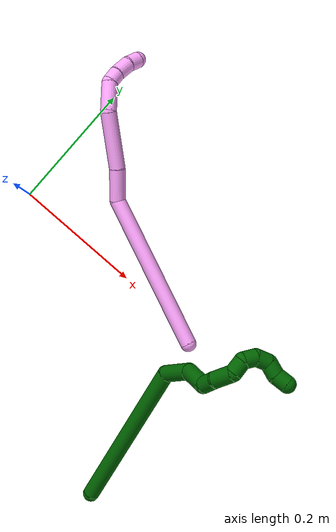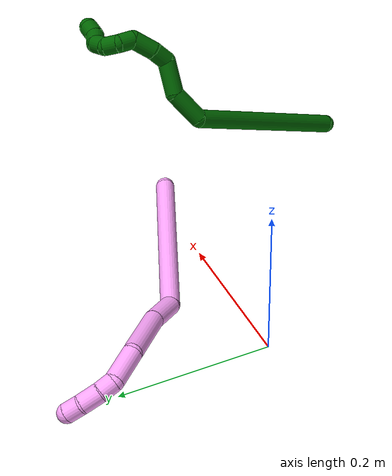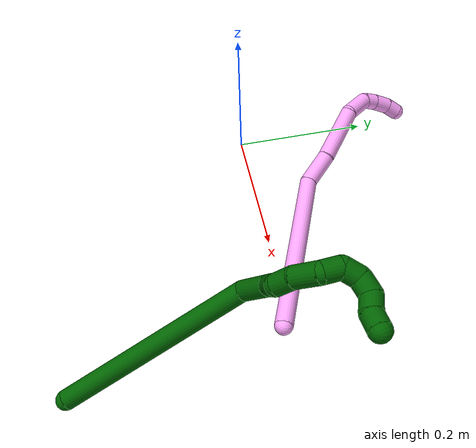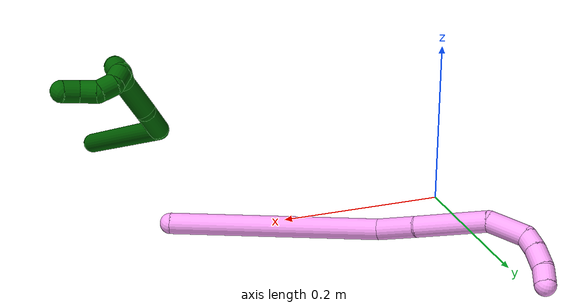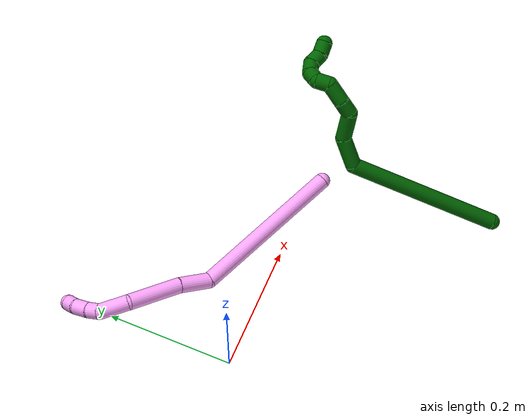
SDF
<sdf version="1.7">
 <world name="default">
  <model name="bin">
   <static>1</static>
   <link name="bottom">
    <collision name="collision-bottom">
     <pose>0 0 -0.01 0 -0 0</pose>
     <geometry><box><size>0.8 0.6 0.02</size></box></geometry>
     <surface>
      <friction><ode><mu>100</mu><mu2>100</mu2></ode></friction>
      <contact><collide_bitmask>65535</collide_bitmask></contact>
     </surface>
    </collision>
   </link>
   <link name="west_wall">
    <collision name="collision-west_wall">
     <pose>-0.41 0 0.1 0 -0 0</pose>
     <geometry><box><size>0.02 0.6 0.2</size></box></geometry>
     <surface>
      <friction><ode><mu>100</mu><mu2>100</mu2></ode></friction>
      <contact><collide_bitmask>65535</collide_bitmask></contact>
     </surface>
    </collision>
   </link>
   <link name="east_wall">
    <collision name="collision-east_wall">
     <pose>0.41 0 0.1 0 -0 0</pose>
     <geometry><box><size>0.02 0.6 0.2</size></box></geometry>
     <surface>
      <friction><ode><mu>100</mu><mu2>100</mu2></ode></friction>
      <contact><collide_bitmask>65535</collide_bitmask></contact>
     </surface>
    </collision>
   </link>
   <link name="south_wall">
    <collision name="collision-south_wall">
     <pose>0 -0.31 0.1 0 -0 0</pose>
     <geometry><box><size>0.8 0.02 0.2</size></box></geometry>
     <surface>
      <friction><ode><mu>100</mu><mu2>100</mu2></ode></friction>
      <contact><collide_bitmask>65535</collide_bitmask></contact>
     </surface>
    </collision>
   </link>
   <link name="north_wall">
    <collision name="collision-north_wall">
     <pose>0 0.31 0.1 0 -0 0</pose>
     <geometry><box><size>0.8 0.02 0.2</size></box></geometry>
     <surface>
      <friction><ode><mu>100</mu><mu2>100</mu2></ode></friction>
      <contact><collide_bitmask>65535</collide_bitmask></contact>
     </surface>
    </collision>
   </link>
  </model>
  <model name="4">
   <static>0</static>
   <link name="4">
    <collision name="collision-cylinder-e_1_1_4">
     <pose>-0.109731 0.050428 0.027769 -1.06743 -1.08764 0.68631</pose>
     <geometry><cylinder><radius>0.0125</radius><length>0.24783</length></cylinder></geometry>
     <surface>
      <friction><ode><mu>1.16</mu><mu2>1.16</mu2><slip1>0</slip1><slip2>0</slip2></ode></friction>
      <contact><ode><kp>1e+06</kp><kd>1</kd><max_vel>0</max_vel><min_depth>0.001</min_depth></ode></contact>
     </surface>
    </collision>
    <visual name="visual-cylinder-e_1_1_4">
     <pose>-0.109731 0.050428 0.027769 -1.06743 -1.08764 0.68631</pose>
     <geometry><cylinder><radius>0.0125</radius><length>0.24783</length></cylinder></geometry>
     <material><ambient>1 0.65098 0.996078 1</ambient></material>
    </visual>
    <collision name="collision-cylinder-e_2_4_5">
     <pose>-0.233014 0.116662 0.069973 -0.830754 -0.564416 0.254375</pose>
     <geometry><cylinder><radius>0.0125</radius><length>0.050669</length></cylinder></geometry>
     <surface>
      <friction><ode><mu>1.16</mu><mu2>1.16</mu2><slip1>0</slip1><slip2>0</slip2></ode></friction>
      <contact><ode><kp>1e+06</kp><kd>1</kd><max_vel>0</max_vel><min_depth>0.001</min_depth></ode></contact>
     </surface>
    </collision>
    <visual name="visual-cylinder-e_2_4_5">
     <pose>-0.233014 0.116662 0.069973 -0.830754 -0.564416 0.254375</pose>
     <geometry><cylinder><radius>0.0125</radius><length>0.050669</length></cylinder></geometry>
     <material><ambient>1 0.65098 0.996078 1</ambient></material>
    </visual>
    <collision name="collision-cylinder-e_3_5_6">
     <pose>-0.27541 0.15689 0.106866 -0.827241 -0.715623 0.325346</pose>
     <geometry><cylinder><radius>0.0125</radius><length>0.087928</length></cylinder></geometry>
     <surface>
      <friction><ode><mu>1.16</mu><mu2>1.16</mu2><slip1>0</slip1><slip2>0</slip2></ode></friction>
      <contact><ode><kp>1e+06</kp><kd>1</kd><max_vel>0</max_vel><min_depth>0.001</min_depth></ode></contact>
     </surface>
    </collision>
    <visual name="visual-cylinder-e_3_5_6">
     <pose>-0.27541 0.15689 0.106866 -0.827241 -0.715623 0.325346</pose>
     <geometry><cylinder><radius>0.0125</radius><length>0.087928</length></cylinder></geometry>
     <material><ambient>1 0.65098 0.996078 1</ambient></material>
    </visual>
    <collision name="collision-cylinder-e_4_6_7">
     <pose>-0.317611 0.200037 0.133085 -1.37262 -0.610279 0.505012</pose>
     <geometry><cylinder><radius>0.0125</radius><length>0.046611</length></cylinder></geometry>
     <surface>
      <friction><ode><mu>1.16</mu><mu2>1.16</mu2><slip1>0</slip1><slip2>0</slip2></ode></friction>
      <contact><ode><kp>1e+06</kp><kd>1</kd><max_vel>0</max_vel><min_depth>0.001</min_depth></ode></contact>
     </surface>
    </collision>
    <visual name="visual-cylinder-e_4_6_7">
     <pose>-0.317611 0.200037 0.133085 -1.37262 -0.610279 0.505012</pose>
     <geometry><cylinder><radius>0.0125</radius><length>0.046611</length></cylinder></geometry>
     <material><ambient>1 0.65098 0.996078 1</ambient></material>
    </visual>
    <collision name="collision-cylinder-e_5_7_8">
     <pose>-0.331608 0.228733 0.135888 -1.66654 -0.06395 0.070381</pose>
     <geometry><cylinder><radius>0.0125</radius><length>0.020074</length></cylinder></geometry>
     <surface>
      <friction><ode><mu>1.16</mu><mu2>1.16</mu2><slip1>0</slip1><slip2>0</slip2></ode></friction>
      <contact><ode><kp>1e+06</kp><kd>1</kd><max_vel>0</max_vel><min_depth>0.001</min_depth></ode></contact>
     </surface>
    </collision>
    <visual name="visual-cylinder-e_5_7_8">
     <pose>-0.331608 0.228733 0.135888 -1.66654 -0.06395 0.070381</pose>
     <geometry><cylinder><radius>0.0125</radius><length>0.020074</length></cylinder></geometry>
     <material><ambient>1 0.65098 0.996078 1</ambient></material>
    </visual>
    <collision name="collision-cylinder-e_6_8_9">
     <pose>-0.331048 0.251577 0.132748 -1.73872 0.091818 -0.108663</pose>
     <geometry><cylinder><radius>0.0125</radius><length>0.026225</length></cylinder></geometry>
     <surface>
      <friction><ode><mu>1.16</mu><mu2>1.16</mu2><slip1>0</slip1><slip2>0</slip2></ode></friction>
      <contact><ode><kp>1e+06</kp><kd>1</kd><max_vel>0</max_vel><min_depth>0.001</min_depth></ode></contact>
     </surface>
    </collision>
    <visual name="visual-cylinder-e_6_8_9">
     <pose>-0.331048 0.251577 0.132748 -1.73872 0.091818 -0.108663</pose>
     <geometry><cylinder><radius>0.0125</radius><length>0.026225</length></cylinder></geometry>
     <material><ambient>1 0.65098 0.996078 1</ambient></material>
    </visual>
    <collision name="collision-cylinder-e_7_9_2">
     <pose>-0.327222 0.273821 0.127094 -1.92563 0.256754 -0.366815</pose>
     <geometry><cylinder><radius>0.0125</radius><length>0.020662</length></cylinder></geometry>
     <surface>
      <friction><ode><mu>1.16</mu><mu2>1.16</mu2><slip1>0</slip1><slip2>0</slip2></ode></friction>
      <contact><ode><kp>1e+06</kp><kd>1</kd><max_vel>0</max_vel><min_depth>0.001</min_depth></ode></contact>
     </surface>
    </collision>
    <visual name="visual-cylinder-e_7_9_2">
     <pose>-0.327222 0.273821 0.127094 -1.92563 0.256754 -0.366815</pose>
     <geometry><cylinder><radius>0.0125</radius><length>0.020662</length></cylinder></geometry>
     <material><ambient>1 0.65098 0.996078 1</ambient></material>
    </visual>
    <collision name="collision-sphere-2">
     <pose>-0.324598 0.28319 0.123622 0 -0 0</pose>
     <geometry><sphere><radius>0.0125</radius></sphere></geometry>
     <surface>
      <friction><ode><mu>1.16</mu><mu2>1.16</mu2><slip1>0</slip1><slip2>0</slip2></ode></friction>
      <contact><ode><kp>1e+06</kp><kd>1</kd><max_vel>0</max_vel><min_depth>0.001</min_depth></ode></contact>
     </surface>
    </collision>
    <visual name="visual-sphere-2">
     <pose>-0.324598 0.28319 0.123622 0 -0 0</pose>
     <geometry><sphere><radius>0.0125</radius></sphere></geometry>
     <material><ambient>1 0.65098 0.996078 1</ambient></material>
    </visual>
    <collision name="collision-sphere-9">
     <pose>-0.329845 0.264451 0.130565 0 -0 0</pose>
     <geometry><sphere><radius>0.0125</radius></sphere></geometry>
     <surface>
      <friction><ode><mu>1.16</mu><mu2>1.16</mu2><slip1>0</slip1><slip2>0</slip2></ode></friction>
      <contact><ode><kp>1e+06</kp><kd>1</kd><max_vel>0</max_vel><min_depth>0.001</min_depth></ode></contact>
     </surface>
    </collision>
    <visual name="visual-sphere-9">
     <pose>-0.329845 0.264451 0.130565 0 -0 0</pose>
     <geometry><sphere><radius>0.0125</radius></sphere></geometry>
     <material><ambient>1 0.65098 0.996078 1</ambient></material>
    </visual>
    <collision name="collision-sphere-4">
     <pose>-0.219462 0.100855 0.055539 0 -0 0</pose>
     <geometry><sphere><radius>0.0125</radius></sphere></geometry>
     <surface>
      <friction><ode><mu>1.16</mu><mu2>1.16</mu2><slip1>0</slip1><slip2>0</slip2></ode></friction>
      <contact><ode><kp>1e+06</kp><kd>1</kd><max_vel>0</max_vel><min_depth>0.001</min_depth></ode></contact>
     </surface>
    </collision>
    <visual name="visual-sphere-4">
     <pose>-0.219462 0.100855 0.055539 0 -0 0</pose>
     <geometry><sphere><radius>0.0125</radius></sphere></geometry>
     <material><ambient>1 0.65098 0.996078 1</ambient></material>
    </visual>
    <collision name="collision-sphere-1">
     <geometry><sphere><radius>0.0125</radius></sphere></geometry>
     <surface>
      <friction><ode><mu>1.16</mu><mu2>1.16</mu2><slip1>0</slip1><slip2>0</slip2></ode></friction>
      <contact><ode><kp>1e+06</kp><kd>1</kd><max_vel>0</max_vel><min_depth>0.001</min_depth></ode></contact>
     </surface>
    </collision>
    <visual name="visual-sphere-1">
     <geometry><sphere><radius>0.0125</radius></sphere></geometry>
     <material><ambient>1 0.65098 0.996078 1</ambient></material>
    </visual>
    <collision name="collision-sphere-8">
     <pose>-0.33225 0.238703 0.13493 0 -0 0</pose>
     <geometry><sphere><radius>0.0125</radius></sphere></geometry>
     <surface>
      <friction><ode><mu>1.16</mu><mu2>1.16</mu2><slip1>0</slip1><slip2>0</slip2></ode></friction>
      <contact><ode><kp>1e+06</kp><kd>1</kd><max_vel>0</max_vel><min_depth>0.001</min_depth></ode></contact>
     </surface>
    </collision>
    <visual name="visual-sphere-8">
     <pose>-0.33225 0.238703 0.13493 0 -0 0</pose>
     <geometry><sphere><radius>0.0125</radius></sphere></geometry>
     <material><ambient>1 0.65098 0.996078 1</ambient></material>
    </visual>
    <collision name="collision-sphere-5">
     <pose>-0.246566 0.132468 0.084406 0 -0 0</pose>
     <geometry><sphere><radius>0.0125</radius></sphere></geometry>
     <surface>
      <friction><ode><mu>1.16</mu><mu2>1.16</mu2><slip1>0</slip1><slip2>0</slip2></ode></friction>
      <contact><ode><kp>1e+06</kp><kd>1</kd><max_vel>0</max_vel><min_depth>0.001</min_depth></ode></contact>
     </surface>
    </collision>
    <visual name="visual-sphere-5">
     <pose>-0.246566 0.132468 0.084406 0 -0 0</pose>
     <geometry><sphere><radius>0.0125</radius></sphere></geometry>
     <material><ambient>1 0.65098 0.996078 1</ambient></material>
    </visual>
    <collision name="collision-sphere-6">
     <pose>-0.304254 0.181312 0.129325 0 -0 0</pose>
     <geometry><sphere><radius>0.0125</radius></sphere></geometry>
     <surface>
      <friction><ode><mu>1.16</mu><mu2>1.16</mu2><slip1>0</slip1><slip2>0</slip2></ode></friction>
      <contact><ode><kp>1e+06</kp><kd>1</kd><max_vel>0</max_vel><min_depth>0.001</min_depth></ode></contact>
     </surface>
    </collision>
    <visual name="visual-sphere-6">
     <pose>-0.304254 0.181312 0.129325 0 -0 0</pose>
     <geometry><sphere><radius>0.0125</radius></sphere></geometry>
     <material><ambient>1 0.65098 0.996078 1</ambient></material>
    </visual>
    <collision name="collision-sphere-7">
     <pose>-0.330967 0.218762 0.136845 0 -0 0</pose>
     <geometry><sphere><radius>0.0125</radius></sphere></geometry>
     <surface>
      <friction><ode><mu>1.16</mu><mu2>1.16</mu2><slip1>0</slip1><slip2>0</slip2></ode></friction>
      <contact><ode><kp>1e+06</kp><kd>1</kd><max_vel>0</max_vel><min_depth>0.001</min_depth></ode></contact>
     </surface>
    </collision>
    <visual name="visual-sphere-7">
     <pose>-0.330967 0.218762 0.136845 0 -0 0</pose>
     <geometry><sphere><radius>0.0125</radius></sphere></geometry>
     <material><ambient>1 0.65098 0.996078 1</ambient></material>
    </visual>
    <inertial>
     <pose>-0.200243 0.116749 0.069725 0 -0 0</pose>
     <mass>0.5</mass>
     <inertia>
      <ixx>0.000897</ixx>
      <ixy>0</ixy>
      <ixz>0</ixz>
      <iyy>0.001585</iyy>
      <iyz>0</iyz>
      <izz>0.000618</izz>
     </inertia>
    </inertial>
   </link>
   <pose>0.339693 -0.013008 0.011499 -0.300064 -0.105533 0.07778</pose>
  </model>
  <model name="6">
   <static>0</static>
   <link name="6">
    <collision name="collision-cylinder-e_1_1_4">
     <pose>0.07601 -0.032471 0.092269 0.338383 0.660605 0.117005</pose>
     <geometry><cylinder><radius>0.0125</radius><length>0.247753</length></cylinder></geometry>
     <surface>
      <friction><ode><mu>1.16</mu><mu2>1.16</mu2><slip1>0</slip1><slip2>0</slip2></ode></friction>
      <contact><ode><kp>1e+06</kp><kd>1</kd><max_vel>0</max_vel><min_depth>0.001</min_depth></ode></contact>
     </surface>
    </collision>
    <visual name="visual-cylinder-e_1_1_4">
     <pose>0.07601 -0.032471 0.092269 0.338383 0.660605 0.117005</pose>
     <geometry><cylinder><radius>0.0125</radius><length>0.247753</length></cylinder></geometry>
     <material><ambient>0 0.392157 0.003922 1</ambient></material>
    </visual>
    <collision name="collision-cylinder-e_2_4_5">
     <pose>0.176148 -0.0658 0.18759 0.27392 1.44013 0.240624</pose>
     <geometry><cylinder><radius>0.0125</radius><length>0.048672</length></cylinder></geometry>
     <surface>
      <friction><ode><mu>1.16</mu><mu2>1.16</mu2><slip1>0</slip1><slip2>0</slip2></ode></friction>
      <contact><ode><kp>1e+06</kp><kd>1</kd><max_vel>0</max_vel><min_depth>0.001</min_depth></ode></contact>
     </surface>
    </collision>
    <visual name="visual-cylinder-e_2_4_5">
     <pose>0.176148 -0.0658 0.18759 0.27392 1.44013 0.240624</pose>
     <geometry><cylinder><radius>0.0125</radius><length>0.048672</length></cylinder></geometry>
     <material><ambient>0 0.392157 0.003922 1</ambient></material>
    </visual>
    <collision name="collision-cylinder-e_3_5_6">
     <pose>0.221073 -0.068809 0.181037 2.92122 1.12873 2.79556</pose>
     <geometry><cylinder><radius>0.0125</radius><length>0.046016</length></cylinder></geometry>
     <surface>
      <friction><ode><mu>1.16</mu><mu2>1.16</mu2><slip1>0</slip1><slip2>0</slip2></ode></friction>
      <contact><ode><kp>1e+06</kp><kd>1</kd><max_vel>0</max_vel><min_depth>0.001</min_depth></ode></contact>
     </surface>
    </collision>
    <visual name="visual-cylinder-e_3_5_6">
     <pose>0.221073 -0.068809 0.181037 2.92122 1.12873 2.79556</pose>
     <geometry><cylinder><radius>0.0125</radius><length>0.046016</length></cylinder></geometry>
     <material><ambient>0 0.392157 0.003922 1</ambient></material>
    </visual>
    <collision name="collision-cylinder-e_4_6_7">
     <pose>0.25305 -0.072942 0.175193 0.484857 1.20752 0.337849</pose>
     <geometry><cylinder><radius>0.0125</radius><length>0.023923</length></cylinder></geometry>
     <surface>
      <friction><ode><mu>1.16</mu><mu2>1.16</mu2><slip1>0</slip1><slip2>0</slip2></ode></friction>
      <contact><ode><kp>1e+06</kp><kd>1</kd><max_vel>0</max_vel><min_depth>0.001</min_depth></ode></contact>
     </surface>
    </collision>
    <visual name="visual-cylinder-e_4_6_7">
     <pose>0.25305 -0.072942 0.175193 0.484857 1.20752 0.337849</pose>
     <geometry><cylinder><radius>0.0125</radius><length>0.023923</length></cylinder></geometry>
     <material><ambient>0 0.392157 0.003922 1</ambient></material>
    </visual>
    <collision name="collision-cylinder-e_5_7_8">
     <pose>0.279026 -0.07425 0.18526 -0.106301 1.16579 -0.070123</pose>
     <geometry><cylinder><radius>0.0125</radius><length>0.032195</length></cylinder></geometry>
     <surface>
      <friction><ode><mu>1.16</mu><mu2>1.16</mu2><slip1>0</slip1><slip2>0</slip2></ode></friction>
      <contact><ode><kp>1e+06</kp><kd>1</kd><max_vel>0</max_vel><min_depth>0.001</min_depth></ode></contact>
     </surface>
    </collision>
    <visual name="visual-cylinder-e_5_7_8">
     <pose>0.279026 -0.07425 0.18526 -0.106301 1.16579 -0.070123</pose>
     <geometry><cylinder><radius>0.0125</radius><length>0.032195</length></cylinder></geometry>
     <material><ambient>0 0.392157 0.003922 1</ambient></material>
    </visual>
    <collision name="collision-cylinder-e_6_8_9">
     <pose>0.298121 -0.072832 0.20129 -0.076494 0.415276 -0.016123</pose>
     <geometry><cylinder><radius>0.0125</radius><length>0.021315</length></cylinder></geometry>
     <surface>
      <friction><ode><mu>1.16</mu><mu2>1.16</mu2><slip1>0</slip1><slip2>0</slip2></ode></friction>
      <contact><ode><kp>1e+06</kp><kd>1</kd><max_vel>0</max_vel><min_depth>0.001</min_depth></ode></contact>
     </surface>
    </collision>
    <visual name="visual-cylinder-e_6_8_9">
     <pose>0.298121 -0.072832 0.20129 -0.076494 0.415276 -0.016123</pose>
     <geometry><cylinder><radius>0.0125</radius><length>0.021315</length></cylinder></geometry>
     <material><ambient>0 0.392157 0.003922 1</ambient></material>
    </visual>
    <collision name="collision-cylinder-e_7_9_10">
     <pose>0.306117 -0.064786 0.216774 -0.902788 0.378332 -0.185095</pose>
     <geometry><cylinder><radius>0.0125</radius><length>0.020013</length></cylinder></geometry>
     <surface>
      <friction><ode><mu>1.16</mu><mu2>1.16</mu2><slip1>0</slip1><slip2>0</slip2></ode></friction>
      <contact><ode><kp>1e+06</kp><kd>1</kd><max_vel>0</max_vel><min_depth>0.001</min_depth></ode></contact>
     </surface>
    </collision>
    <visual name="visual-cylinder-e_7_9_10">
     <pose>0.306117 -0.064786 0.216774 -0.902788 0.378332 -0.185095</pose>
     <geometry><cylinder><radius>0.0125</radius><length>0.020013</length></cylinder></geometry>
     <material><ambient>0 0.392157 0.003922 1</ambient></material>
    </visual>
    <collision name="collision-cylinder-e_8_10_11">
     <pose>0.314062 -0.048423 0.222499 -1.57457 0.43843 -0.440037</pose>
     <geometry><cylinder><radius>0.0125</radius><length>0.020019</length></cylinder></geometry>
     <surface>
      <friction><ode><mu>1.16</mu><mu2>1.16</mu2><slip1>0</slip1><slip2>0</slip2></ode></friction>
      <contact><ode><kp>1e+06</kp><kd>1</kd><max_vel>0</max_vel><min_depth>0.001</min_depth></ode></contact>
     </surface>
    </collision>
    <visual name="visual-cylinder-e_8_10_11">
     <pose>0.314062 -0.048423 0.222499 -1.57457 0.43843 -0.440037</pose>
     <geometry><cylinder><radius>0.0125</radius><length>0.020019</length></cylinder></geometry>
     <material><ambient>0 0.392157 0.003922 1</ambient></material>
    </visual>
    <collision name="collision-cylinder-e_9_11_12">
     <pose>0.321706 -0.032422 0.216044 -2.3175 0.34476 -0.75818</pose>
     <geometry><cylinder><radius>0.0125</radius><length>0.020089</length></cylinder></geometry>
     <surface>
      <friction><ode><mu>1.16</mu><mu2>1.16</mu2><slip1>0</slip1><slip2>0</slip2></ode></friction>
      <contact><ode><kp>1e+06</kp><kd>1</kd><max_vel>0</max_vel><min_depth>0.001</min_depth></ode></contact>
     </surface>
    </collision>
    <visual name="visual-cylinder-e_9_11_12">
     <pose>0.321706 -0.032422 0.216044 -2.3175 0.34476 -0.75818</pose>
     <geometry><cylinder><radius>0.0125</radius><length>0.020089</length></cylinder></geometry>
     <material><ambient>0 0.392157 0.003922 1</ambient></material>
    </visual>
    <collision name="collision-cylinder-e_10_12_2">
     <pose>0.331394 -0.018489 0.206231 -2.02235 0.680485 -1.02877</pose>
     <geometry><cylinder><radius>0.0125</radius><length>0.020006</length></cylinder></geometry>
     <surface>
      <friction><ode><mu>1.16</mu><mu2>1.16</mu2><slip1>0</slip1><slip2>0</slip2></ode></friction>
      <contact><ode><kp>1e+06</kp><kd>1</kd><max_vel>0</max_vel><min_depth>0.001</min_depth></ode></contact>
     </surface>
    </collision>
    <visual name="visual-cylinder-e_10_12_2">
     <pose>0.331394 -0.018489 0.206231 -2.02235 0.680485 -1.02877</pose>
     <geometry><cylinder><radius>0.0125</radius><length>0.020006</length></cylinder></geometry>
     <material><ambient>0 0.392157 0.003922 1</ambient></material>
    </visual>
    <collision name="collision-sphere-2">
     <pose>0.337688 -0.011493 0.202838 0 -0 0</pose>
     <geometry><sphere><radius>0.0125</radius></sphere></geometry>
     <surface>
      <friction><ode><mu>1.16</mu><mu2>1.16</mu2><slip1>0</slip1><slip2>0</slip2></ode></friction>
      <contact><ode><kp>1e+06</kp><kd>1</kd><max_vel>0</max_vel><min_depth>0.001</min_depth></ode></contact>
     </surface>
    </collision>
    <visual name="visual-sphere-2">
     <pose>0.337688 -0.011493 0.202838 0 -0 0</pose>
     <geometry><sphere><radius>0.0125</radius></sphere></geometry>
     <material><ambient>0 0.392157 0.003922 1</ambient></material>
    </visual>
    <collision name="collision-sphere-12">
     <pose>0.325101 -0.025484 0.209623 0 -0 0</pose>
     <geometry><sphere><radius>0.0125</radius></sphere></geometry>
     <surface>
      <friction><ode><mu>1.16</mu><mu2>1.16</mu2><slip1>0</slip1><slip2>0</slip2></ode></friction>
      <contact><ode><kp>1e+06</kp><kd>1</kd><max_vel>0</max_vel><min_depth>0.001</min_depth></ode></contact>
     </surface>
    </collision>
    <visual name="visual-sphere-12">
     <pose>0.325101 -0.025484 0.209623 0 -0 0</pose>
     <geometry><sphere><radius>0.0125</radius></sphere></geometry>
     <material><ambient>0 0.392157 0.003922 1</ambient></material>
    </visual>
    <collision name="collision-sphere-11">
     <pose>0.318311 -0.03936 0.222465 0 -0 0</pose>
     <geometry><sphere><radius>0.0125</radius></sphere></geometry>
     <surface>
      <friction><ode><mu>1.16</mu><mu2>1.16</mu2><slip1>0</slip1><slip2>0</slip2></ode></friction>
      <contact><ode><kp>1e+06</kp><kd>1</kd><max_vel>0</max_vel><min_depth>0.001</min_depth></ode></contact>
     </surface>
    </collision>
    <visual name="visual-sphere-11">
     <pose>0.318311 -0.03936 0.222465 0 -0 0</pose>
     <geometry><sphere><radius>0.0125</radius></sphere></geometry>
     <material><ambient>0 0.392157 0.003922 1</ambient></material>
    </visual>
    <collision name="collision-sphere-10">
     <pose>0.309813 -0.057486 0.222534 0 -0 0</pose>
     <geometry><sphere><radius>0.0125</radius></sphere></geometry>
     <surface>
      <friction><ode><mu>1.16</mu><mu2>1.16</mu2><slip1>0</slip1><slip2>0</slip2></ode></friction>
      <contact><ode><kp>1e+06</kp><kd>1</kd><max_vel>0</max_vel><min_depth>0.001</min_depth></ode></contact>
     </surface>
    </collision>
    <visual name="visual-sphere-10">
     <pose>0.309813 -0.057486 0.222534 0 -0 0</pose>
     <geometry><sphere><radius>0.0125</radius></sphere></geometry>
     <material><ambient>0 0.392157 0.003922 1</ambient></material>
    </visual>
    <collision name="collision-sphere-9">
     <pose>0.302421 -0.072086 0.211014 0 -0 0</pose>
     <geometry><sphere><radius>0.0125</radius></sphere></geometry>
     <surface>
      <friction><ode><mu>1.16</mu><mu2>1.16</mu2><slip1>0</slip1><slip2>0</slip2></ode></friction>
      <contact><ode><kp>1e+06</kp><kd>1</kd><max_vel>0</max_vel><min_depth>0.001</min_depth></ode></contact>
     </surface>
    </collision>
    <visual name="visual-sphere-9">
     <pose>0.302421 -0.072086 0.211014 0 -0 0</pose>
     <geometry><sphere><radius>0.0125</radius></sphere></geometry>
     <material><ambient>0 0.392157 0.003922 1</ambient></material>
    </visual>
    <collision name="collision-sphere-4">
     <pose>0.15202 -0.064942 0.184537 0 -0 0</pose>
     <geometry><sphere><radius>0.0125</radius></sphere></geometry>
     <surface>
      <friction><ode><mu>1.16</mu><mu2>1.16</mu2><slip1>0</slip1><slip2>0</slip2></ode></friction>
      <contact><ode><kp>1e+06</kp><kd>1</kd><max_vel>0</max_vel><min_depth>0.001</min_depth></ode></contact>
     </surface>
    </collision>
    <visual name="visual-sphere-4">
     <pose>0.15202 -0.064942 0.184537 0 -0 0</pose>
     <geometry><sphere><radius>0.0125</radius></sphere></geometry>
     <material><ambient>0 0.392157 0.003922 1</ambient></material>
    </visual>
    <collision name="collision-sphere-1">
     <geometry><sphere><radius>0.0125</radius></sphere></geometry>
     <surface>
      <friction><ode><mu>1.16</mu><mu2>1.16</mu2><slip1>0</slip1><slip2>0</slip2></ode></friction>
      <contact><ode><kp>1e+06</kp><kd>1</kd><max_vel>0</max_vel><min_depth>0.001</min_depth></ode></contact>
     </surface>
    </collision>
    <visual name="visual-sphere-1">
     <geometry><sphere><radius>0.0125</radius></sphere></geometry>
     <material><ambient>0 0.392157 0.003922 1</ambient></material>
    </visual>
    <collision name="collision-sphere-8">
     <pose>0.293821 -0.073577 0.191567 0 -0 0</pose>
     <geometry><sphere><radius>0.0125</radius></sphere></geometry>
     <surface>
      <friction><ode><mu>1.16</mu><mu2>1.16</mu2><slip1>0</slip1><slip2>0</slip2></ode></friction>
      <contact><ode><kp>1e+06</kp><kd>1</kd><max_vel>0</max_vel><min_depth>0.001</min_depth></ode></contact>
     </surface>
    </collision>
    <visual name="visual-sphere-8">
     <pose>0.293821 -0.073577 0.191567 0 -0 0</pose>
     <geometry><sphere><radius>0.0125</radius></sphere></geometry>
     <material><ambient>0 0.392157 0.003922 1</ambient></material>
    </visual>
    <collision name="collision-sphere-5">
     <pose>0.200277 -0.066657 0.190642 0 -0 0</pose>
     <geometry><sphere><radius>0.0125</radius></sphere></geometry>
     <surface>
      <friction><ode><mu>1.16</mu><mu2>1.16</mu2><slip1>0</slip1><slip2>0</slip2></ode></friction>
      <contact><ode><kp>1e+06</kp><kd>1</kd><max_vel>0</max_vel><min_depth>0.001</min_depth></ode></contact>
     </surface>
    </collision>
    <visual name="visual-sphere-5">
     <pose>0.200277 -0.066657 0.190642 0 -0 0</pose>
     <geometry><sphere><radius>0.0125</radius></sphere></geometry>
     <material><ambient>0 0.392157 0.003922 1</ambient></material>
    </visual>
    <collision name="collision-sphere-6">
     <pose>0.241869 -0.070961 0.171432 0 -0 0</pose>
     <geometry><sphere><radius>0.0125</radius></sphere></geometry>
     <surface>
      <friction><ode><mu>1.16</mu><mu2>1.16</mu2><slip1>0</slip1><slip2>0</slip2></ode></friction>
      <contact><ode><kp>1e+06</kp><kd>1</kd><max_vel>0</max_vel><min_depth>0.001</min_depth></ode></contact>
     </surface>
    </collision>
    <visual name="visual-sphere-6">
     <pose>0.241869 -0.070961 0.171432 0 -0 0</pose>
     <geometry><sphere><radius>0.0125</radius></sphere></geometry>
     <material><ambient>0 0.392157 0.003922 1</ambient></material>
    </visual>
    <collision name="collision-sphere-7">
     <pose>0.264231 -0.074923 0.178953 0 -0 0</pose>
     <geometry><sphere><radius>0.0125</radius></sphere></geometry>
     <surface>
      <friction><ode><mu>1.16</mu><mu2>1.16</mu2><slip1>0</slip1><slip2>0</slip2></ode></friction>
      <contact><ode><kp>1e+06</kp><kd>1</kd><max_vel>0</max_vel><min_depth>0.001</min_depth></ode></contact>
     </surface>
    </collision>
    <visual name="visual-sphere-7">
     <pose>0.264231 -0.074923 0.178953 0 -0 0</pose>
     <geometry><sphere><radius>0.0125</radius></sphere></geometry>
     <material><ambient>0 0.392157 0.003922 1</ambient></material>
    </visual>
    <inertial>
     <pose>0.168951 -0.046777 0.14405 0 -0 0</pose>
     <mass>0.5</mass>
     <inertia>
      <ixx>0.00115</ixx>
      <ixy>0</ixy>
      <ixz>0</ixz>
      <iyy>0.001373</iyy>
      <iyz>0</iyz>
      <izz>-0.000465</izz>
     </inertia>
    </inertial>
   </link>
   <pose>0.378632 -0.287317 0.011497 -2.0115 -0.844512 0.720025</pose>
  </model>
 </world>
</sdf>
